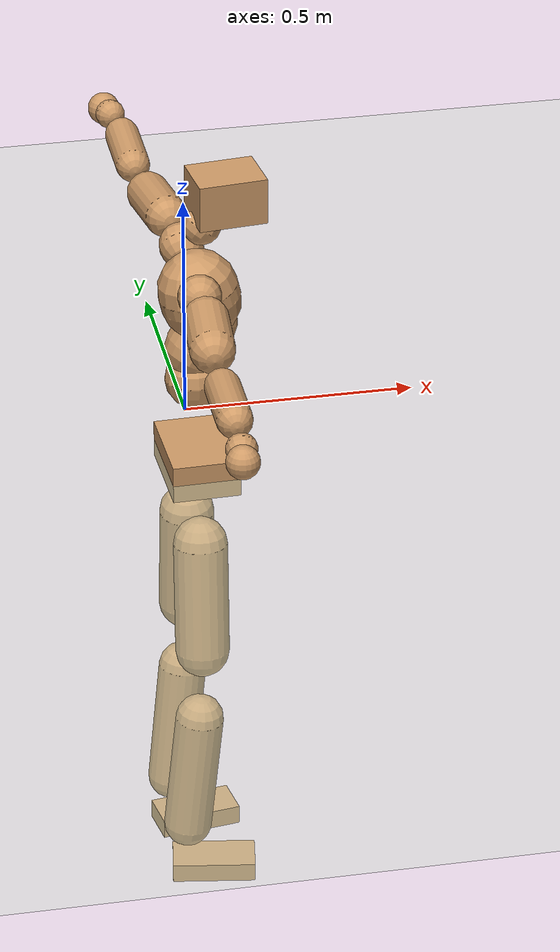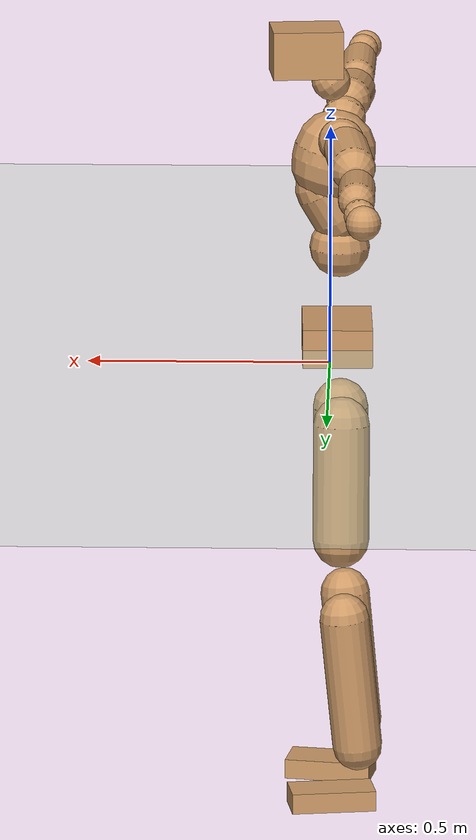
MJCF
<mujoco model="humanoid">
  <compiler coordinate="local" angle="radian"/>
  <default>
    <joint damping="0.0" armature="0.01" stiffness="0.0" limited="true"/>
    <geom conaffinity="1" condim="3" contype="7" margin="0.001" rgba="0.8 0.6 .4 1"/>
  </default>
  <asset>
    <texture type="skybox" builtin="gradient" rgb1=".4 .5 .6" rgb2="0 0 0" width="100" height="100"/>
    <texture builtin="flat" height="1278" mark="cross" markrgb="1 1 1" name="texgeom" random="0.01" rgb1="0.8 0.6 0.4" rgb2="0.8 0.6 0.4" type="cube" width="127"/>
    <texture builtin="checker" height="100" name="texplane" rgb1="0 0 0" rgb2="0.8 0.8 0.8" type="2d" width="100"/>
    <material name="MatPlane" reflectance="0.5" shininess="1" specular="1" texrepeat="60 60" texture="texplane"/>
    <material name="geom" texture="texgeom" texuniform="true"/>
  </asset>
  <worldbody>
    <light cutoff="100" diffuse="1 1 1" dir="-0 0 -1.3" directional="true" exponent="1" pos="0 0 1.3" specular=".1 .1 .1"/>
    <geom conaffinity="1" condim="3" name="floor" pos="0 0 0" rgba="0.8 0.9 0.8 1" size="100 100 .2" type="plane" material="MatPlane"/>
    <body name="Pelvis" pos="-0.0041 -0.2081 0.0128">
      <freejoint name="Pelvis"/>
      <geom type="box" contype="1" conaffinity="1" density="5359.374546" pos="-0.0076 -0.0002 -0.0132" size="0.0728 0.1033 0.0408" quat="0.9999 0.0000 0.0000 0.0129" name="Pelvis"/>
      <body name="L_Hip" pos="-0.0187 0.0636 -0.0948">
        <joint name="L_Hip_x" type="hinge" pos="0 0 0" axis="1 0 0" stiffness="1600" damping="160" armature="0.02" range="-180.0000 180.0000"/>
        <joint name="L_Hip_y" type="hinge" pos="0 0 0" axis="0 1 0" stiffness="1600" damping="160" armature="0.02" range="-180.0000 180.0000"/>
        <joint name="L_Hip_z" type="hinge" pos="0 0 0" axis="0 0 1" stiffness="1600" damping="160" armature="0.02" range="-180.0000 180.0000"/>
        <geom type="capsule" contype="1" conaffinity="1" density="2040.816327" size="0.059" fromto="0.0000 0.0087 -0.0886 0.0001 0.0325 -0.3318" name="L_Hip"/>
        <body name="L_Knee" pos="0.0002 0.0412 -0.4204">
          <joint name="L_Knee_x" type="hinge" pos="0 0 0" axis="1 0 0" stiffness="1600" damping="160" armature="0.02" range="-180.0000 180.0000"/>
          <joint name="L_Knee_y" type="hinge" pos="0 0 0" axis="0 1 0" stiffness="1600" damping="160" armature="0.02" range="-180.0000 180.0000"/>
          <joint name="L_Knee_z" type="hinge" pos="0 0 0" axis="0 0 1" stiffness="1600" damping="160" armature="0.02" range="-180.0000 180.0000"/>
          <geom type="capsule" contype="1" conaffinity="1" density="1234.567901" size="0.0522" fromto="-0.0083 -0.0025 -0.0817 -0.0370 -0.0114 -0.3645" name="L_Knee"/>
          <body name="L_Ankle" pos="-0.0453 -0.0139 -0.4462">
            <joint name="L_Ankle_x" type="hinge" pos="0 0 0" axis="1 0 0" stiffness="1600" damping="160" armature="0.02" range="-180.0000 180.0000"/>
            <joint name="L_Ankle_y" type="hinge" pos="0 0 0" axis="0 1 0" stiffness="1600" damping="160" armature="0.02" range="-180.0000 180.0000"/>
            <joint name="L_Ankle_z" type="hinge" pos="0 0 0" axis="0 0 1" stiffness="1600" damping="160" armature="0.02" range="-180.0000 180.0000"/>
            <geom type="box" contype="1" conaffinity="1" density="1000.000036" pos="0.0624 0.0094 -0.0303" size="0.0889 0.0445 0.0216" quat="0.9972 0.0000 0.0000 0.0746" name="L_Ankle"/>
            <body name="L_Toe" pos="0.1249 0.0188 -0.0607">
              <joint name="L_Toe_x" type="hinge" pos="0 0 0" axis="1 0 0" stiffness="1000" damping="100" armature="0.02" range="-180.0000 180.0000"/>
              <joint name="L_Toe_y" type="hinge" pos="0 0 0" axis="0 1 0" stiffness="1000" damping="100" armature="0.02" range="-180.0000 180.0000"/>
              <joint name="L_Toe_z" type="hinge" pos="0 0 0" axis="0 0 1" stiffness="1000" damping="100" armature="0.02" range="-180.0000 180.0000"/>
              <geom type="box" contype="1" conaffinity="1" density="9189406.834998" pos="0.0000 0.0000 0.0294" size="0.0009 0.0022 0.001" quat="0.9967 0.0000 0.0000 0.0811" name="L_Toe"/>
            </body>
          </body>
        </body>
      </body>
      <body name="R_Hip" pos="-0.014 -0.0609 -0.0939">
        <joint name="R_Hip_x" type="hinge" pos="0 0 0" axis="1 0 0" stiffness="1600" damping="160" armature="0.02" range="-180.0000 180.0000"/>
        <joint name="R_Hip_y" type="hinge" pos="0 0 0" axis="0 1 0" stiffness="1600" damping="160" armature="0.02" range="-180.0000 180.0000"/>
        <joint name="R_Hip_z" type="hinge" pos="0 0 0" axis="0 0 1" stiffness="1600" damping="160" armature="0.02" range="-180.0000 180.0000"/>
        <geom type="capsule" contype="1" conaffinity="1" density="2040.816327" size="0.0581" fromto="-0.0009 -0.0096 -0.0876 -0.0034 -0.0373 -0.3383" name="R_Hip"/>
        <body name="R_Knee" pos="-0.0042 -0.0469 -0.4259">
          <joint name="R_Knee_x" type="hinge" pos="0 0 0" axis="1 0 0" stiffness="1600" damping="160" armature="0.02" range="-180.0000 180.0000"/>
          <joint name="R_Knee_y" type="hinge" pos="0 0 0" axis="0 1 0" stiffness="1600" damping="160" armature="0.02" range="-180.0000 180.0000"/>
          <joint name="R_Knee_z" type="hinge" pos="0 0 0" axis="0 0 1" stiffness="1600" damping="160" armature="0.02" range="-180.0000 180.0000"/>
          <geom type="capsule" contype="1" conaffinity="1" density="1234.567901" size="0.0522" fromto="-0.0078 0.0031 -0.0818 -0.0345 0.0136 -0.3602" name="R_Knee"/>
          <body name="R_Ankle" pos="-0.0423 0.0167 -0.442">
            <joint name="R_Ankle_x" type="hinge" pos="0 0 0" axis="1 0 0" stiffness="1600" damping="160" armature="0.02" range="-180.0000 180.0000"/>
            <joint name="R_Ankle_y" type="hinge" pos="0 0 0" axis="0 1 0" stiffness="1600" damping="160" armature="0.02" range="-180.0000 180.0000"/>
            <joint name="R_Ankle_z" type="hinge" pos="0 0 0" axis="0 0 1" stiffness="1600" damping="160" armature="0.02" range="-180.0000 180.0000"/>
            <geom type="box" contype="1" conaffinity="1" density="999.99998" pos="0.0638 -0.0105 -0.0256" size="0.0905 0.0468 0.0208" quat="0.9967 0.0000 0.0000 -0.0816" name="R_Ankle"/>
            <body name="R_Toe" pos="0.1276 -0.021 -0.0511">
              <joint name="R_Toe_x" type="hinge" pos="0 0 0" axis="1 0 0" stiffness="1000" damping="100" armature="0.02" range="-180.0000 180.0000"/>
              <joint name="R_Toe_y" type="hinge" pos="0 0 0" axis="0 1 0" stiffness="1000" damping="100" armature="0.02" range="-180.0000 180.0000"/>
              <joint name="R_Toe_z" type="hinge" pos="0 0 0" axis="0 0 1" stiffness="1000" damping="100" armature="0.02" range="-180.0000 180.0000"/>
              <geom type="box" contype="1" conaffinity="1" density="8831632.097795" pos="0.0000 0.0000 0.0284" size="0.0008 0.0023 0.0012" quat="0.9973 0.0000 0.0000 -0.0729" name="R_Toe"/>
            </body>
          </body>
        </body>
      </body>
      <body name="Torso" pos="-0.0132 -0.0039 0.1095">
        <joint name="Torso_x" type="hinge" pos="0 0 0" axis="1 0 0" stiffness="2000" damping="200" armature="0.02" range="-180.0000 180.0000"/>
        <joint name="Torso_y" type="hinge" pos="0 0 0" axis="0 1 0" stiffness="2000" damping="200" armature="0.02" range="-180.0000 180.0000"/>
        <joint name="Torso_z" type="hinge" pos="0 0 0" axis="0 0 1" stiffness="2000" damping="200" armature="0.02" range="-180.0000 180.0000"/>
        <geom type="capsule" contype="1" conaffinity="1" density="2040.816327" size="0.0628" fromto="0.0009 0.0027 0.0722 0.0009 0.0028 0.0742" name="Torso"/>
        <body name="Spine" pos="0.0018 0.0055 0.1465">
          <joint name="Spine_x" type="hinge" pos="0 0 0" axis="1 0 0" stiffness="2000" damping="200" armature="0.02" range="-180.0000 180.0000"/>
          <joint name="Spine_y" type="hinge" pos="0 0 0" axis="0 1 0" stiffness="2000" damping="200" armature="0.02" range="-180.0000 180.0000"/>
          <joint name="Spine_z" type="hinge" pos="0 0 0" axis="0 0 1" stiffness="2000" damping="200" armature="0.02" range="-180.0000 180.0000"/>
          <geom type="capsule" contype="1" conaffinity="1" density="2040.816327" size="0.0618" fromto="0.0312 0.0036 0.0532 -0.0019 -0.0002 -0.0032" name="Spine"/>
          <body name="Chest" pos="0.0293 0.0034 0.05">
            <joint name="Chest_x" type="hinge" pos="0 0 0" axis="1 0 0" stiffness="2000" damping="200" armature="0.02" range="-180.0000 180.0000"/>
            <joint name="Chest_y" type="hinge" pos="0 0 0" axis="0 1 0" stiffness="2000" damping="200" armature="0.02" range="-180.0000 180.0000"/>
            <joint name="Chest_z" type="hinge" pos="0 0 0" axis="0 0 1" stiffness="2000" damping="200" armature="0.02" range="-180.0000 180.0000"/>
            <geom type="capsule" contype="1" conaffinity="1" density="2040.816327" size="0.0856" fromto="-0.0199 -0.0009 0.0833 -0.0136 -0.0006 0.0569" name="Chest"/>
            <body name="Neck" pos="-0.0358 -0.004 0.1988">
              <joint name="Neck_x" type="hinge" pos="0 0 0" axis="1 0 0" stiffness="1000" damping="100" armature="0.02" range="-180.0000 180.0000"/>
              <joint name="Neck_y" type="hinge" pos="0 0 0" axis="0 1 0" stiffness="1000" damping="100" armature="0.02" range="-180.0000 180.0000"/>
              <joint name="Neck_z" type="hinge" pos="0 0 0" axis="0 0 1" stiffness="1000" damping="100" armature="0.02" range="-180.0000 180.0000"/>
              <geom type="capsule" contype="1" conaffinity="1" density="1000" size="0.0397" fromto="0.0246 0.0017 0.0312 0.0258 0.0018 0.0328" name="Neck"/>
              <body name="Head" pos="0.0504 0.0036 0.064">
                <joint name="Head_x" type="hinge" pos="0 0 0" axis="1 0 0" stiffness="1000" damping="100" armature="0.02" range="-180.0000 180.0000"/>
                <joint name="Head_y" type="hinge" pos="0 0 0" axis="0 1 0" stiffness="1000" damping="100" armature="0.02" range="-180.0000 180.0000"/>
                <joint name="Head_z" type="hinge" pos="0 0 0" axis="0 0 1" stiffness="1000" damping="100" armature="0.02" range="-180.0000 180.0000"/>
                <geom type="box" contype="1" conaffinity="1" density="2250.000248" pos="0.0262 0.0028 0.0330" size="0.0726 0.0569 0.0498" quat="0.9986 0.0000 0.0000 0.0529" name="Head"/>
              </body>
            </body>
            <body name="L_Thorax" pos="-0.0311 0.0711 0.1117">
              <joint name="L_Thorax_x" type="hinge" pos="0 0 0" axis="1 0 0" stiffness="1000" damping="100" armature="0.02" range="-180.0000 180.0000"/>
              <joint name="L_Thorax_y" type="hinge" pos="0 0 0" axis="0 1 0" stiffness="1000" damping="100" armature="0.02" range="-180.0000 180.0000"/>
              <joint name="L_Thorax_z" type="hinge" pos="0 0 0" axis="0 0 1" stiffness="1000" damping="100" armature="0.02" range="-180.0000 180.0000"/>
              <geom type="capsule" contype="1" conaffinity="1" density="1000" size="0.0473" fromto="-0.0028 0.0432 0.0189 -0.0025 0.0375 0.0164" name="L_Thorax"/>
              <body name="L_Shoulder" pos="-0.0053 0.0807 0.0354">
                <joint name="L_Shoulder_x" type="hinge" pos="0 0 0" axis="1 0 0" stiffness="1000" damping="100" armature="0.02" range="-720.0000 720.0000"/>
                <joint name="L_Shoulder_y" type="hinge" pos="0 0 0" axis="0 1 0" stiffness="1000" damping="100" armature="0.02" range="-720.0000 720.0000"/>
                <joint name="L_Shoulder_z" type="hinge" pos="0 0 0" axis="0 0 1" stiffness="1000" damping="100" armature="0.02" range="-720.0000 720.0000"/>
                <geom type="capsule" contype="1" conaffinity="1" density="1000" size="0.0459" fromto="-0.0088 0.0751 -0.0058 -0.0246 0.2100 -0.0162" name="L_Shoulder"/>
                <body name="L_Elbow" pos="-0.0334 0.2852 -0.022">
                  <joint name="L_Elbow_x" type="hinge" pos="0 0 0" axis="1 0 0" stiffness="1000" damping="100" armature="0.02" range="-720.0000 720.0000"/>
                  <joint name="L_Elbow_y" type="hinge" pos="0 0 0" axis="0 1 0" stiffness="1000" damping="100" armature="0.02" range="-720.0000 720.0000"/>
                  <joint name="L_Elbow_z" type="hinge" pos="0 0 0" axis="0 0 1" stiffness="1000" damping="100" armature="0.02" range="-720.0000 720.0000"/>
                  <geom type="capsule" contype="1" conaffinity="1" density="1000" size="0.0369" fromto="-0.0003 0.0668 0.0029 -0.0008 0.2079 0.0091" name="L_Elbow"/>
                  <body name="L_Wrist" pos="-0.0011 0.2747 0.0121">
                    <joint name="L_Wrist_x" type="hinge" pos="0 0 0" axis="1 0 0" stiffness="600" damping="60" armature="0.02" range="-180.0000 180.0000"/>
                    <joint name="L_Wrist_y" type="hinge" pos="0 0 0" axis="0 1 0" stiffness="600" damping="60" armature="0.02" range="-180.0000 180.0000"/>
                    <joint name="L_Wrist_z" type="hinge" pos="0 0 0" axis="0 0 1" stiffness="600" damping="60" armature="0.02" range="-180.0000 180.0000"/>
                    <geom type="capsule" contype="1" conaffinity="1" density="1000" size="0.0319" fromto="-0.0073 0.0426 -0.0054 -0.0077 0.0446 -0.0056" name="L_Wrist"/>
                    <body name="L_Hand" pos="-0.015 0.0872 -0.011">
                      <joint name="L_Hand_x" type="hinge" pos="0 0 0" axis="1 0 0" stiffness="600" damping="60" armature="0.02" range="-180.0000 180.0000"/>
                      <joint name="L_Hand_y" type="hinge" pos="0 0 0" axis="0 1 0" stiffness="600" damping="60" armature="0.02" range="-180.0000 180.0000"/>
                      <joint name="L_Hand_z" type="hinge" pos="0 0 0" axis="0 0 1" stiffness="600" damping="60" armature="0.02" range="-180.0000 180.0000"/>
                      <geom type="sphere" contype="1" conaffinity="1" density="1000" size="0.0349" pos="0.0000 0.0000 0.0000" name="L_Hand"/>
                    </body>
                  </body>
                </body>
              </body>
            </body>
            <body name="R_Thorax" pos="-0.0338 -0.0716 0.1101">
              <joint name="R_Thorax_x" type="hinge" pos="0 0 0" axis="1 0 0" stiffness="1000" damping="100" armature="0.02" range="-180.0000 180.0000"/>
              <joint name="R_Thorax_y" type="hinge" pos="0 0 0" axis="0 1 0" stiffness="1000" damping="100" armature="0.02" range="-180.0000 180.0000"/>
              <joint name="R_Thorax_z" type="hinge" pos="0 0 0" axis="0 0 1" stiffness="1000" damping="100" armature="0.02" range="-180.0000 180.0000"/>
              <geom type="capsule" contype="1" conaffinity="1" density="1000" size="0.046" fromto="-0.0026 -0.0415 0.0164 -0.0028 -0.0434 0.0171" name="R_Thorax"/>
              <body name="R_Shoulder" pos="-0.0054 -0.0849 0.0335">
                <joint name="R_Shoulder_x" type="hinge" pos="0 0 0" axis="1 0 0" stiffness="1000" damping="100" armature="0.02" range="-720.0000 720.0000"/>
                <joint name="R_Shoulder_y" type="hinge" pos="0 0 0" axis="0 1 0" stiffness="1000" damping="100" armature="0.02" range="-720.0000 720.0000"/>
                <joint name="R_Shoulder_z" type="hinge" pos="0 0 0" axis="0 0 1" stiffness="1000" damping="100" armature="0.02" range="-720.0000 720.0000"/>
                <geom type="capsule" contype="1" conaffinity="1" density="1000" size="0.0472" fromto="-0.0057 -0.0768 -0.0047 -0.0144 -0.1954 -0.0119" name="R_Shoulder"/>
                <body name="R_Elbow" pos="-0.0201 -0.2722 -0.0166">
                  <joint name="R_Elbow_x" type="hinge" pos="0 0 0" axis="1 0 0" stiffness="1000" damping="100" armature="0.02" range="-720.0000 720.0000"/>
                  <joint name="R_Elbow_y" type="hinge" pos="0 0 0" axis="0 1 0" stiffness="1000" damping="100" armature="0.02" range="-720.0000 720.0000"/>
                  <joint name="R_Elbow_z" type="hinge" pos="0 0 0" axis="0 0 1" stiffness="1000" damping="100" armature="0.02" range="-720.0000 720.0000"/>
                  <geom type="capsule" contype="1" conaffinity="1" density="1000" size="0.0368" fromto="-0.0014 -0.0667 0.0022 -0.0044 -0.2118 0.0070" name="R_Elbow"/>
                  <body name="R_Wrist" pos="-0.0058 -0.2786 0.0092">
                    <joint name="R_Wrist_x" type="hinge" pos="0 0 0" axis="1 0 0" stiffness="600" damping="60" armature="0.02" range="-180.0000 180.0000"/>
                    <joint name="R_Wrist_y" type="hinge" pos="0 0 0" axis="0 1 0" stiffness="600" damping="60" armature="0.02" range="-180.0000 180.0000"/>
                    <joint name="R_Wrist_z" type="hinge" pos="0 0 0" axis="0 0 1" stiffness="600" damping="60" armature="0.02" range="-180.0000 180.0000"/>
                    <geom type="capsule" contype="1" conaffinity="1" density="1000" size="0.032" fromto="-0.0055 -0.0420 -0.0038 -0.0058 -0.0440 -0.0039" name="R_Wrist"/>
                    <body name="R_Hand" pos="-0.0112 -0.086 -0.0077">
                      <joint name="R_Hand_x" type="hinge" pos="0 0 0" axis="1 0 0" stiffness="600" damping="60" armature="0.02" range="-180.0000 180.0000"/>
                      <joint name="R_Hand_y" type="hinge" pos="0 0 0" axis="0 1 0" stiffness="600" damping="60" armature="0.02" range="-180.0000 180.0000"/>
                      <joint name="R_Hand_z" type="hinge" pos="0 0 0" axis="0 0 1" stiffness="600" damping="60" armature="0.02" range="-180.0000 180.0000"/>
                      <geom type="sphere" contype="1" conaffinity="1" density="1000" size="0.0342" pos="0.0000 0.0000 0.0000" name="R_Hand"/>
                    </body>
                  </body>
                </body>
              </body>
            </body>
          </body>
        </body>
      </body>
    </body>
  </worldbody>
  <actuator>
    <motor name="L_Hip_x" joint="L_Hip_x" gear="500"/>
    <motor name="L_Hip_y" joint="L_Hip_y" gear="500"/>
    <motor name="L_Hip_z" joint="L_Hip_z" gear="500"/>
    <motor name="L_Knee_x" joint="L_Knee_x" gear="500"/>
    <motor name="L_Knee_y" joint="L_Knee_y" gear="500"/>
    <motor name="L_Knee_z" joint="L_Knee_z" gear="500"/>
    <motor name="L_Ankle_x" joint="L_Ankle_x" gear="500"/>
    <motor name="L_Ankle_y" joint="L_Ankle_y" gear="500"/>
    <motor name="L_Ankle_z" joint="L_Ankle_z" gear="500"/>
    <motor name="L_Toe_x" joint="L_Toe_x" gear="500"/>
    <motor name="L_Toe_y" joint="L_Toe_y" gear="500"/>
    <motor name="L_Toe_z" joint="L_Toe_z" gear="500"/>
    <motor name="R_Hip_x" joint="R_Hip_x" gear="500"/>
    <motor name="R_Hip_y" joint="R_Hip_y" gear="500"/>
    <motor name="R_Hip_z" joint="R_Hip_z" gear="500"/>
    <motor name="R_Knee_x" joint="R_Knee_x" gear="500"/>
    <motor name="R_Knee_y" joint="R_Knee_y" gear="500"/>
    <motor name="R_Knee_z" joint="R_Knee_z" gear="500"/>
    <motor name="R_Ankle_x" joint="R_Ankle_x" gear="500"/>
    <motor name="R_Ankle_y" joint="R_Ankle_y" gear="500"/>
    <motor name="R_Ankle_z" joint="R_Ankle_z" gear="500"/>
    <motor name="R_Toe_x" joint="R_Toe_x" gear="500"/>
    <motor name="R_Toe_y" joint="R_Toe_y" gear="500"/>
    <motor name="R_Toe_z" joint="R_Toe_z" gear="500"/>
    <motor name="Torso_x" joint="Torso_x" gear="500"/>
    <motor name="Torso_y" joint="Torso_y" gear="500"/>
    <motor name="Torso_z" joint="Torso_z" gear="500"/>
    <motor name="Spine_x" joint="Spine_x" gear="500"/>
    <motor name="Spine_y" joint="Spine_y" gear="500"/>
    <motor name="Spine_z" joint="Spine_z" gear="500"/>
    <motor name="Chest_x" joint="Chest_x" gear="500"/>
    <motor name="Chest_y" joint="Chest_y" gear="500"/>
    <motor name="Chest_z" joint="Chest_z" gear="500"/>
    <motor name="Neck_x" joint="Neck_x" gear="500"/>
    <motor name="Neck_y" joint="Neck_y" gear="500"/>
    <motor name="Neck_z" joint="Neck_z" gear="500"/>
    <motor name="Head_x" joint="Head_x" gear="500"/>
    <motor name="Head_y" joint="Head_y" gear="500"/>
    <motor name="Head_z" joint="Head_z" gear="500"/>
    <motor name="L_Thorax_x" joint="L_Thorax_x" gear="500"/>
    <motor name="L_Thorax_y" joint="L_Thorax_y" gear="500"/>
    <motor name="L_Thorax_z" joint="L_Thorax_z" gear="500"/>
    <motor name="L_Shoulder_x" joint="L_Shoulder_x" gear="500"/>
    <motor name="L_Shoulder_y" joint="L_Shoulder_y" gear="500"/>
    <motor name="L_Shoulder_z" joint="L_Shoulder_z" gear="500"/>
    <motor name="L_Elbow_x" joint="L_Elbow_x" gear="500"/>
    <motor name="L_Elbow_y" joint="L_Elbow_y" gear="500"/>
    <motor name="L_Elbow_z" joint="L_Elbow_z" gear="500"/>
    <motor name="L_Wrist_x" joint="L_Wrist_x" gear="500"/>
    <motor name="L_Wrist_y" joint="L_Wrist_y" gear="500"/>
    <motor name="L_Wrist_z" joint="L_Wrist_z" gear="500"/>
    <motor name="L_Hand_x" joint="L_Hand_x" gear="500"/>
    <motor name="L_Hand_y" joint="L_Hand_y" gear="500"/>
    <motor name="L_Hand_z" joint="L_Hand_z" gear="500"/>
    <motor name="R_Thorax_x" joint="R_Thorax_x" gear="500"/>
    <motor name="R_Thorax_y" joint="R_Thorax_y" gear="500"/>
    <motor name="R_Thorax_z" joint="R_Thorax_z" gear="500"/>
    <motor name="R_Shoulder_x" joint="R_Shoulder_x" gear="500"/>
    <motor name="R_Shoulder_y" joint="R_Shoulder_y" gear="500"/>
    <motor name="R_Shoulder_z" joint="R_Shoulder_z" gear="500"/>
    <motor name="R_Elbow_x" joint="R_Elbow_x" gear="500"/>
    <motor name="R_Elbow_y" joint="R_Elbow_y" gear="500"/>
    <motor name="R_Elbow_z" joint="R_Elbow_z" gear="500"/>
    <motor name="R_Wrist_x" joint="R_Wrist_x" gear="500"/>
    <motor name="R_Wrist_y" joint="R_Wrist_y" gear="500"/>
    <motor name="R_Wrist_z" joint="R_Wrist_z" gear="500"/>
    <motor name="R_Hand_x" joint="R_Hand_x" gear="500"/>
    <motor name="R_Hand_y" joint="R_Hand_y" gear="500"/>
    <motor name="R_Hand_z" joint="R_Hand_z" gear="500"/>
  </actuator>
  <contact>
    <exclude body1="Torso" body2="Chest"/>
    <exclude body1="Head" body2="Chest"/>
    <exclude body1="R_Knee" body2="R_Toe"/>
    <exclude body1="R_Knee" body2="L_Ankle"/>
    <exclude body1="R_Knee" body2="L_Toe"/>
    <exclude body1="L_Knee" body2="L_Toe"/>
    <exclude body1="L_Knee" body2="R_Ankle"/>
    <exclude body1="L_Knee" body2="R_Toe"/>
    <exclude body1="L_Shoulder" body2="Chest"/>
    <exclude body1="R_Shoulder" body2="Chest"/>
  </contact>
  <sensor/>
  <size njmax="700" nconmax="700"/>
</mujoco>
